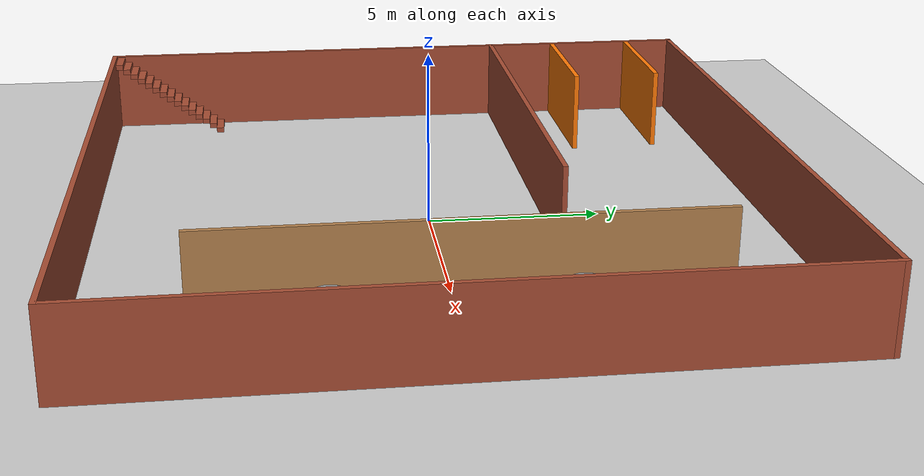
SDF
<sdf version="1.7">
 <world name="default">
  <plugin name="gazebo_ros_state" filename="libgazebo_ros_state.so">
   <ros><namespace>/gazebo</namespace></ros>
  </plugin>
  <light name="sun" type="directional">
   <pose>0 0 10 0 -0 0</pose>
   <diffuse>0.8 0.8 0.8 1</diffuse>
   <specular>0.2 0.2 0.2 1</specular>
   <attenuation>
    <range>1000</range>
    <constant>0.9</constant>
    <linear>0.01</linear>
    <quadratic>0.001</quadratic>
   </attenuation>
   <direction>-0.5 0.1 -0.9</direction>
   <spot><inner_angle>0</inner_angle><outer_angle>0</outer_angle><falloff>0</falloff></spot>
  </light>
  <model name="ground_plane">
   <static>1</static>
   <link name="link">
    <collision name="collision">
     <geometry><plane><normal>0 0 1</normal><size>100 100</size></plane></geometry>
     <surface>
      <contact><collide_bitmask>65535</collide_bitmask></contact>
      <friction><ode><mu>100</mu><mu2>50</mu2></ode></friction>
     </surface>
    </collision>
    <visual name="visual">
     <cast_shadows>0</cast_shadows>
     <geometry><plane><normal>0 0 1</normal><size>100 100</size></plane></geometry>
     <material>
      <script><uri>file://media/materials/scripts/gazebo.material</uri><name>Gazebo/Grey</name></script>
     </material>
    </visual>
   </link>
  </model>
  <gravity>0 0 -9.8</gravity>
  <magnetic_field>6e-06 2.3e-05 -4.2e-05</magnetic_field>
  <atmosphere type="adiabatic"/>
  <physics type="ode">
   <max_step_size>0.004</max_step_size>
   <real_time_factor>1</real_time_factor>
   <real_time_update_rate>250</real_time_update_rate>
  </physics>
  <scene><ambient>0.4 0.4 0.4 1</ambient><background>0.7 0.7 0.7 1</background><shadows>1</shadows></scene>
  <audio><device>default</device></audio>
  <spherical_coordinates>
   <surface_model>EARTH_WGS84</surface_model>
   <latitude_deg>0</latitude_deg>
   <longitude_deg>0</longitude_deg>
   <elevation>0</elevation>
   <heading_deg>0</heading_deg>
  </spherical_coordinates>
  <model name="mppid">
   <pose>-0.219007 0.100688 0 0 -0 0</pose>
   <link name="Stairs_0">
    <visual name="Stairs_0_Visual_0">
     <pose>-9.36464 -6.29035 0.083333 0 -0 0</pose>
     <geometry><box><size>1 0.233333 0.166667</size></box></geometry>
     <material>
      <script><uri>file://media/materials/scripts/gazebo.material</uri><name>Gazebo/Bricks</name></script>
      <ambient>1 1 1 1</ambient>
     </material>
     <meta><layer>0</layer></meta>
    </visual>
    <collision name="Stairs_0_Collision_0">
     <geometry><box><size>1 0.233333 0.166667</size></box></geometry>
     <pose>-9.36464 -6.29035 0.083333 0 -0 0</pose>
    </collision>
    <visual name="Stairs_0_Visual_1">
     <pose>-9.36464 -6.52369 0.25 0 -0 0</pose>
     <geometry><box><size>1 0.233333 0.166667</size></box></geometry>
     <material>
      <script><uri>file://media/materials/scripts/gazebo.material</uri><name>Gazebo/Bricks</name></script>
      <ambient>1 1 1 1</ambient>
     </material>
     <meta><layer>0</layer></meta>
    </visual>
    <collision name="Stairs_0_Collision_1">
     <geometry><box><size>1 0.233333 0.166667</size></box></geometry>
     <pose>-9.36464 -6.52369 0.25 0 -0 0</pose>
    </collision>
    <visual name="Stairs_0_Visual_2">
     <pose>-9.36464 -6.75702 0.416667 0 -0 0</pose>
     <geometry><box><size>1 0.233333 0.166667</size></box></geometry>
     <material>
      <script><uri>file://media/materials/scripts/gazebo.material</uri><name>Gazebo/Bricks</name></script>
      <ambient>1 1 1 1</ambient>
     </material>
     <meta><layer>0</layer></meta>
    </visual>
    <collision name="Stairs_0_Collision_2">
     <geometry><box><size>1 0.233333 0.166667</size></box></geometry>
     <pose>-9.36464 -6.75702 0.416667 0 -0 0</pose>
    </collision>
    <visual name="Stairs_0_Visual_3">
     <pose>-9.36464 -6.99035 0.583333 0 -0 0</pose>
     <geometry><box><size>1 0.233333 0.166667</size></box></geometry>
     <material>
      <script><uri>file://media/materials/scripts/gazebo.material</uri><name>Gazebo/Bricks</name></script>
      <ambient>1 1 1 1</ambient>
     </material>
     <meta><layer>0</layer></meta>
    </visual>
    <collision name="Stairs_0_Collision_3">
     <geometry><box><size>1 0.233333 0.166667</size></box></geometry>
     <pose>-9.36464 -6.99035 0.583333 0 -0 0</pose>
    </collision>
    <visual name="Stairs_0_Visual_4">
     <pose>-9.36464 -7.22368 0.75 0 -0 0</pose>
     <geometry><box><size>1 0.233333 0.166667</size></box></geometry>
     <material>
      <script><uri>file://media/materials/scripts/gazebo.material</uri><name>Gazebo/Bricks</name></script>
      <ambient>1 1 1 1</ambient>
     </material>
     <meta><layer>0</layer></meta>
    </visual>
    <collision name="Stairs_0_Collision_4">
     <geometry><box><size>1 0.233333 0.166667</size></box></geometry>
     <pose>-9.36464 -7.22368 0.75 0 -0 0</pose>
    </collision>
    <visual name="Stairs_0_Visual_5">
     <pose>-9.36464 -7.45702 0.916667 0 -0 0</pose>
     <geometry><box><size>1 0.233333 0.166667</size></box></geometry>
     <material>
      <script><uri>file://media/materials/scripts/gazebo.material</uri><name>Gazebo/Bricks</name></script>
      <ambient>1 1 1 1</ambient>
     </material>
     <meta><layer>0</layer></meta>
    </visual>
    <collision name="Stairs_0_Collision_5">
     <geometry><box><size>1 0.233333 0.166667</size></box></geometry>
     <pose>-9.36464 -7.45702 0.916667 0 -0 0</pose>
    </collision>
    <visual name="Stairs_0_Visual_6">
     <pose>-9.36464 -7.69035 1.08333 0 -0 0</pose>
     <geometry><box><size>1 0.233333 0.166667</size></box></geometry>
     <material>
      <script><uri>file://media/materials/scripts/gazebo.material</uri><name>Gazebo/Bricks</name></script>
      <ambient>1 1 1 1</ambient>
     </material>
     <meta><layer>0</layer></meta>
    </visual>
    <collision name="Stairs_0_Collision_6">
     <geometry><box><size>1 0.233333 0.166667</size></box></geometry>
     <pose>-9.36464 -7.69035 1.08333 0 -0 0</pose>
    </collision>
    <visual name="Stairs_0_Visual_7">
     <pose>-9.36464 -7.92368 1.25 0 -0 0</pose>
     <geometry><box><size>1 0.233333 0.166667</size></box></geometry>
     <material>
      <script><uri>file://media/materials/scripts/gazebo.material</uri><name>Gazebo/Bricks</name></script>
      <ambient>1 1 1 1</ambient>
     </material>
     <meta><layer>0</layer></meta>
    </visual>
    <collision name="Stairs_0_Collision_7">
     <geometry><box><size>1 0.233333 0.166667</size></box></geometry>
     <pose>-9.36464 -7.92368 1.25 0 -0 0</pose>
    </collision>
    <visual name="Stairs_0_Visual_8">
     <pose>-9.36464 -8.15702 1.41667 0 -0 0</pose>
     <geometry><box><size>1 0.233333 0.166667</size></box></geometry>
     <material>
      <script><uri>file://media/materials/scripts/gazebo.material</uri><name>Gazebo/Bricks</name></script>
      <ambient>1 1 1 1</ambient>
     </material>
     <meta><layer>0</layer></meta>
    </visual>
    <collision name="Stairs_0_Collision_8">
     <geometry><box><size>1 0.233333 0.166667</size></box></geometry>
     <pose>-9.36464 -8.15702 1.41667 0 -0 0</pose>
    </collision>
    <visual name="Stairs_0_Visual_9">
     <pose>-9.36464 -8.39035 1.58333 0 -0 0</pose>
     <geometry><box><size>1 0.233333 0.166667</size></box></geometry>
     <material>
      <script><uri>file://media/materials/scripts/gazebo.material</uri><name>Gazebo/Bricks</name></script>
      <ambient>1 1 1 1</ambient>
     </material>
     <meta><layer>0</layer></meta>
    </visual>
    <collision name="Stairs_0_Collision_9">
     <geometry><box><size>1 0.233333 0.166667</size></box></geometry>
     <pose>-9.36464 -8.39035 1.58333 0 -0 0</pose>
    </collision>
    <visual name="Stairs_0_Visual_10">
     <pose>-9.36464 -8.62369 1.75 0 -0 0</pose>
     <geometry><box><size>1 0.233333 0.166667</size></box></geometry>
     <material>
      <script><uri>file://media/materials/scripts/gazebo.material</uri><name>Gazebo/Bricks</name></script>
      <ambient>1 1 1 1</ambient>
     </material>
     <meta><layer>0</layer></meta>
    </visual>
    <collision name="Stairs_0_Collision_10">
     <geometry><box><size>1 0.233333 0.166667</size></box></geometry>
     <pose>-9.36464 -8.62369 1.75 0 -0 0</pose>
    </collision>
    <visual name="Stairs_0_Visual_11">
     <pose>-9.36464 -8.85702 1.91667 0 -0 0</pose>
     <geometry><box><size>1 0.233333 0.166667</size></box></geometry>
     <material>
      <script><uri>file://media/materials/scripts/gazebo.material</uri><name>Gazebo/Bricks</name></script>
      <ambient>1 1 1 1</ambient>
     </material>
     <meta><layer>0</layer></meta>
    </visual>
    <collision name="Stairs_0_Collision_11">
     <geometry><box><size>1 0.233333 0.166667</size></box></geometry>
     <pose>-9.36464 -8.85702 1.91667 0 -0 0</pose>
    </collision>
    <visual name="Stairs_0_Visual_12">
     <pose>-9.36464 -9.09035 2.08333 0 -0 0</pose>
     <geometry><box><size>1 0.233333 0.166667</size></box></geometry>
     <material>
      <script><uri>file://media/materials/scripts/gazebo.material</uri><name>Gazebo/Bricks</name></script>
      <ambient>1 1 1 1</ambient>
     </material>
     <meta><layer>0</layer></meta>
    </visual>
    <collision name="Stairs_0_Collision_12">
     <geometry><box><size>1 0.233333 0.166667</size></box></geometry>
     <pose>-9.36464 -9.09035 2.08333 0 -0 0</pose>
    </collision>
    <visual name="Stairs_0_Visual_13">
     <pose>-9.36464 -9.32368 2.25 0 -0 0</pose>
     <geometry><box><size>1 0.233333 0.166667</size></box></geometry>
     <material>
      <script><uri>file://media/materials/scripts/gazebo.material</uri><name>Gazebo/Bricks</name></script>
      <ambient>1 1 1 1</ambient>
     </material>
     <meta><layer>0</layer></meta>
    </visual>
    <collision name="Stairs_0_Collision_13">
     <geometry><box><size>1 0.233333 0.166667</size></box></geometry>
     <pose>-9.36464 -9.32368 2.25 0 -0 0</pose>
    </collision>
    <visual name="Stairs_0_Visual_14">
     <pose>-9.36464 -9.55702 2.41667 0 -0 0</pose>
     <geometry><box><size>1 0.233333 0.166667</size></box></geometry>
     <material>
      <script><uri>file://media/materials/scripts/gazebo.material</uri><name>Gazebo/Bricks</name></script>
      <ambient>1 1 1 1</ambient>
     </material>
     <meta><layer>0</layer></meta>
    </visual>
    <collision name="Stairs_0_Collision_14">
     <geometry><box><size>1 0.233333 0.166667</size></box></geometry>
     <pose>-9.36464 -9.55702 2.41667 0 -0 0</pose>
    </collision>
   </link>
   <link name="Wall_49">
    <collision name="Wall_49_Collision">
     <geometry><box><size>19.75 0.15 2.5</size></box></geometry>
     <pose>0 0 1.25 0 -0 0</pose>
    </collision>
    <visual name="Wall_49_Visual">
     <pose>0 0 1.25 0 -0 0</pose>
     <geometry><box><size>19.75 0.15 2.5</size></box></geometry>
     <material>
      <script><uri>file://media/materials/scripts/gazebo.material</uri><name>Gazebo/Bricks</name></script>
      <ambient>1 1 1 1</ambient>
     </material>
     <meta><layer>0</layer></meta>
    </visual>
    <pose>-10.05 0 0 0 -0 -1.5708</pose>
   </link>
   <link name="Wall_50">
    <collision name="Wall_50_Collision">
     <geometry><box><size>20.25 0.15 2.5</size></box></geometry>
     <pose>0 0 1.25 0 -0 0</pose>
    </collision>
    <visual name="Wall_50_Visual">
     <pose>0 0 1.25 0 -0 0</pose>
     <geometry><box><size>20.25 0.15 2.5</size></box></geometry>
     <material>
      <script><uri>file://media/materials/scripts/gazebo.material</uri><name>Gazebo/Bricks</name></script>
      <ambient>1 1 1 1</ambient>
     </material>
     <meta><layer>0</layer></meta>
    </visual>
    <pose>-0 -9.8 0 0 -0 0</pose>
   </link>
   <link name="Wall_51">
    <collision name="Wall_51_Collision">
     <geometry><box><size>19.75 0.15 2.5</size></box></geometry>
     <pose>0 0 1.25 0 -0 0</pose>
    </collision>
    <visual name="Wall_51_Visual">
     <pose>0 0 1.25 0 -0 0</pose>
     <geometry><box><size>19.75 0.15 2.5</size></box></geometry>
     <material>
      <script><uri>file://media/materials/scripts/gazebo.material</uri><name>Gazebo/Bricks</name></script>
      <ambient>1 1 1 1</ambient>
     </material>
     <meta><layer>0</layer></meta>
    </visual>
    <pose>10.05 0 0 0 -0 1.5708</pose>
   </link>
   <link name="Wall_52">
    <collision name="Wall_52_Collision">
     <geometry><box><size>20.25 0.15 2.5</size></box></geometry>
     <pose>0 0 1.25 0 -0 0</pose>
    </collision>
    <visual name="Wall_52_Visual">
     <pose>0 0 1.25 0 -0 0</pose>
     <geometry><box><size>20.25 0.15 2.5</size></box></geometry>
     <material>
      <script><uri>file://media/materials/scripts/gazebo.material</uri><name>Gazebo/Bricks</name></script>
      <ambient>1 1 1 1</ambient>
     </material>
     <meta><layer>0</layer></meta>
    </visual>
    <pose>-0 9.8 0 0 -0 3.14159</pose>
   </link>
   <link name="Wall_56">
    <collision name="Wall_56_Collision">
     <geometry><box><size>14 0.15 2.5</size></box></geometry>
     <pose>0 0 1.25 0 -0 0</pose>
    </collision>
    <visual name="Wall_56_Visual">
     <pose>0 0 1.25 0 -0 0</pose>
     <geometry><box><size>14 0.15 2.5</size></box></geometry>
     <material>
      <script><uri>file://media/materials/scripts/gazebo.material</uri><name>Gazebo/Wood</name></script>
      <ambient>1 1 1 1</ambient>
     </material>
     <meta><layer>0</layer></meta>
    </visual>
    <pose>6.29801 0.125079 0 0 -0 -1.5708</pose>
   </link>
   <link name="Wall_59">
    <collision name="Wall_59_Collision">
     <geometry><box><size>13 0.15 2.5</size></box></geometry>
     <pose>0 0 1.25 0 -0 0</pose>
    </collision>
    <visual name="Wall_59_Visual">
     <pose>0 0 1.25 0 -0 0</pose>
     <geometry><box><size>13 0.15 2.5</size></box></geometry>
     <material>
      <script><uri>file://media/materials/scripts/gazebo.material</uri><name>Gazebo/Bricks</name></script>
      <ambient>0.435294 0.796078 0.67451 1</ambient>
     </material>
     <meta><layer>0</layer></meta>
    </visual>
    <pose>-3.60883 3.33079 0 0 -0 0</pose>
   </link>
   <link name="Wall_61">
    <collision name="Wall_61_Collision">
     <geometry><box><size>4.25 0.15 2.5</size></box></geometry>
     <pose>0 0 1.25 0 -0 0</pose>
    </collision>
    <visual name="Wall_61_Visual">
     <pose>0 0 1.25 0 -0 0</pose>
     <geometry><box><size>4.25 0.15 2.5</size></box></geometry>
     <material>
      <script><uri>file://media/materials/scripts/gazebo.material</uri><name>Gazebo/Grey</name></script>
      <ambient>0.996078 0.47451 0.0196078 1</ambient>
     </material>
     <meta><layer>0</layer></meta>
    </visual>
    <pose>-7.92299 8.19759 0 0 -0 0</pose>
   </link>
   <link name="Wall_64">
    <collision name="Wall_64_Collision">
     <geometry><box><size>4.25 0.15 2.5</size></box></geometry>
     <pose>0 0 1.25 0 -0 0</pose>
    </collision>
    <visual name="Wall_64_Visual">
     <pose>0 0 1.25 0 -0 0</pose>
     <geometry><box><size>4.25 0.15 2.5</size></box></geometry>
     <material>
      <script><uri>file://media/materials/scripts/gazebo.material</uri><name>Gazebo/Grey</name></script>
      <ambient>0.996078 0.47451 0.0196078 1</ambient>
     </material>
     <meta><layer>0</layer></meta>
    </visual>
    <pose>-7.86216 5.52085 0 0 -0 0</pose>
   </link>
   <static>1</static>
  </model>
  <model name="unit_box_2">
   <pose>9.24731 -8.31087 0.5 0 -0 0</pose>
   <link name="link">
    <inertial>
     <mass>1</mass>
     <inertia>
      <ixx>0.166667</ixx>
      <ixy>0</ixy>
      <ixz>0</ixz>
      <iyy>0.166667</iyy>
      <iyz>0</iyz>
      <izz>0.166667</izz>
     </inertia>
    </inertial>
    <collision name="collision"><geometry><box><size>1 1 1</size></box></geometry></collision>
    <visual name="visual">
     <geometry><box><size>1 1 1</size></box></geometry>
     <material>
      <script><name>Gazebo/Grey</name><uri>file://media/materials/scripts/gazebo.material</uri></script>
     </material>
    </visual>
   </link>
  </model>
  <model name="unit_cylinder_0">
   <pose>6.85481 3.14924 0.499998 3e-06 -3e-06 0</pose>
   <link name="link">
    <inertial>
     <mass>1</mass>
     <inertia><ixx>0.145833</ixx><ixy>0</ixy><ixz>0</ixz><iyy>0.145833</iyy><iyz>0</iyz><izz>0.125</izz></inertia>
    </inertial>
    <collision name="collision">
     <geometry><cylinder><radius>0.5</radius><length>1</length></cylinder></geometry>
    </collision>
    <visual name="visual">
     <geometry><cylinder><radius>0.5</radius><length>1</length></cylinder></geometry>
     <material>
      <script><name>Gazebo/Grey</name><uri>file://media/materials/scripts/gazebo.material</uri></script>
     </material>
    </visual>
   </link>
  </model>
  <model name="unit_cylinder_1">
   <pose>9.25506 0.075496 0.499992 -3e-06 3e-06 0</pose>
   <link name="link">
    <inertial>
     <mass>1</mass>
     <inertia><ixx>0.145833</ixx><ixy>0</ixy><ixz>0</ixz><iyy>0.145833</iyy><iyz>0</iyz><izz>0.125</izz></inertia>
    </inertial>
    <collision name="collision">
     <geometry><cylinder><radius>0.5</radius><length>1</length></cylinder></geometry>
    </collision>
    <visual name="visual">
     <geometry><cylinder><radius>0.5</radius><length>1</length></cylinder></geometry>
     <material>
      <script><name>Gazebo/Grey</name><uri>file://media/materials/scripts/gazebo.material</uri></script>
     </material>
    </visual>
   </link>
  </model>
  <model name="unit_cylinder_2">
   <pose>6.83478 -3.22509 0.499992 -3e-06 3e-06 0</pose>
   <link name="link">
    <inertial>
     <mass>1</mass>
     <inertia><ixx>0.145833</ixx><ixy>0</ixy><ixz>0</ixz><iyy>0.145833</iyy><iyz>0</iyz><izz>0.125</izz></inertia>
    </inertial>
    <collision name="collision">
     <geometry><cylinder><radius>0.5</radius><length>1</length></cylinder></geometry>
    </collision>
    <visual name="visual">
     <geometry><cylinder><radius>0.5</radius><length>1</length></cylinder></geometry>
     <material>
      <script><name>Gazebo/Grey</name><uri>file://media/materials/scripts/gazebo.material</uri></script>
     </material>
    </visual>
   </link>
  </model>
  <model name="unit_cylinder_3">
   <pose>9.25601 -6.31228 0.49999 0 -0 0</pose>
   <link name="link">
    <inertial>
     <mass>1</mass>
     <inertia><ixx>0.145833</ixx><ixy>0</ixy><ixz>0</ixz><iyy>0.145833</iyy><iyz>0</iyz><izz>0.125</izz></inertia>
    </inertial>
    <collision name="collision">
     <geometry><cylinder><radius>0.5</radius><length>1</length></cylinder></geometry>
    </collision>
    <visual name="visual">
     <geometry><cylinder><radius>0.5</radius><length>1</length></cylinder></geometry>
     <material>
      <script><name>Gazebo/Grey</name><uri>file://media/materials/scripts/gazebo.material</uri></script>
     </material>
    </visual>
   </link>
  </model>
  <model name="unit_cylinder">
   <pose>9.05466 6.55929 0.499992 -3e-06 4e-06 0</pose>
   <link name="link">
    <inertial>
     <mass>1</mass>
     <inertia><ixx>0.145833</ixx><ixy>0</ixy><ixz>0</ixz><iyy>0.145833</iyy><iyz>0</iyz><izz>0.125</izz></inertia>
    </inertial>
    <collision name="collision">
     <geometry><cylinder><radius>0.5</radius><length>1</length></cylinder></geometry>
    </collision>
    <visual name="visual">
     <geometry><cylinder><radius>0.5</radius><length>1</length></cylinder></geometry>
     <material>
      <script><name>Gazebo/Grey</name><uri>file://media/materials/scripts/gazebo.material</uri></script>
     </material>
    </visual>
   </link>
  </model>
 </world>
</sdf>
